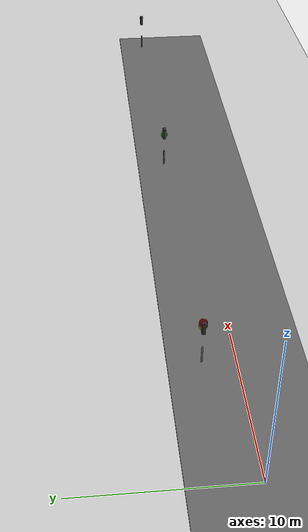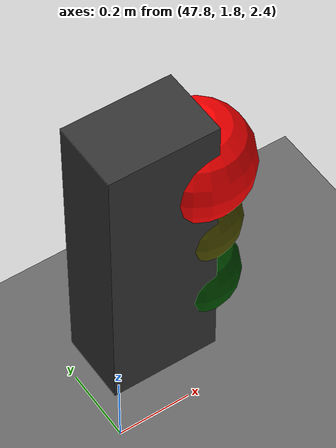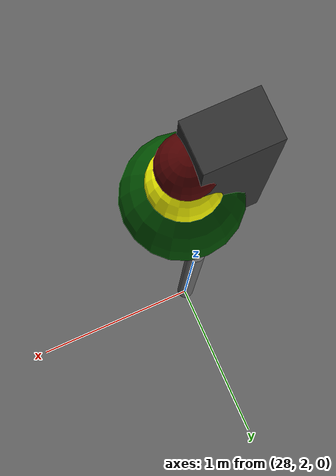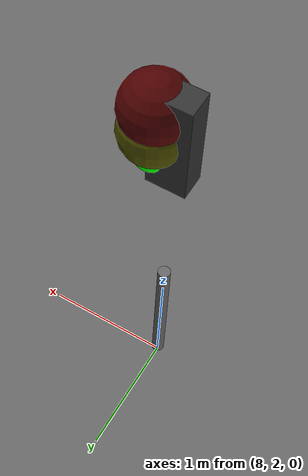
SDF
<?xml version="1.0"?>
<sdf version="1.6">
  <world name="minimal_traffic_world">

    <physics type="ode">
      <max_step_size>0.001</max_step_size>
      <real_time_factor>1</real_time_factor>
      <real_time_update_rate>1000</real_time_update_rate>
    </physics>

    <include>
      <uri>model://sun</uri>
    </include>

    <include>
      <uri>model://ground_plane</uri>
    </include>

    <!-- MAIN ROAD -->
    <model name="main_road">
      <static>true</static>
      <link name="link">
        <collision name="collision">
          <geometry>
            <box>
              <size>100 8 0.1</size>
            </box>
          </geometry>
        </collision>
        <visual name="visual">
          <geometry>
            <box>
              <size>100 8 0.1</size>
            </box>
          </geometry>
          <material>
            <ambient>0.3 0.3 0.3 1</ambient>
            <diffuse>0.4 0.4 0.4 1</diffuse>
          </material>
        </visual>
      </link>
      <pose>0 0 0 0 0 0</pose>
    </model>

    <!-- TRAFFIC LIGHT 1 - GREEN at 8m -->
    <model name="traffic_light_green">
      <static>true</static>
      <link name="pole">
        <visual name="visual">
          <geometry>
            <cylinder>
              <radius>0.05</radius>
              <length>2.5</length>
            </cylinder>
          </geometry>
          <material>
            <ambient>0.3 0.3 0.3 1</ambient>
            <diffuse>0.4 0.4 0.4 1</diffuse>
          </material>
        </visual>
      </link>

      <link name="housing">
        <visual name="visual">
          <geometry>
            <box>
              <size>0.3 0.2 0.8</size>
            </box>
          </geometry>
          <material>
            <ambient>0.1 0.1 0.1 1</ambient>
            <diffuse>0.2 0.2 0.2 1</diffuse>
          </material>
        </visual>
        <pose>0 0 2.8 0 0 0</pose>
      </link>

      <link name="red_light">
        <visual name="visual">
          <geometry>
            <sphere>
              <radius>0.25</radius>
            </sphere>
          </geometry>
          <material>
            <ambient>0.2 0 0 1</ambient>
            <diffuse>0.3 0 0 1</diffuse>
          </material>
        </visual>
        <pose>-0.15 0 3.0 0 0 0</pose>
      </link>

      <link name="yellow_light">
        <visual name="visual">
          <geometry>
            <sphere>
              <radius>0.25</radius>
            </sphere>
          </geometry>
          <material>
            <ambient>0.2 0.2 0 1</ambient>
            <diffuse>0.3 0.3 0 1</diffuse>
          </material>
        </visual>
        <pose>-0.15 0 2.8 0 0 0</pose>
      </link>

      <link name="green_light">
        <visual name="visual">
          <geometry>
            <sphere>
              <radius>0.15</radius>
            </sphere>
          </geometry>
          <material>
            <ambient>0 1 0 1</ambient>
            <diffuse>0 1 0 1</diffuse>
            <emissive>0 1 0 1</emissive>
          </material>
        </visual>
        <pose>-0.15 0 2.6 0 0 0</pose>
      </link>

      <pose>8 2 0 0 0 3.14159</pose>
    </model>

    <!-- TRAFFIC LIGHT 2 - YELLOW at 28m -->
    <model name="traffic_light_yellow">
      <static>true</static>
      <link name="pole">
        <visual name="visual">
          <geometry>
            <cylinder>
              <radius>0.05</radius>
              <length>2.5</length>
            </cylinder>
          </geometry>
          <material>
            <ambient>0.3 0.3 0.3 1</ambient>
            <diffuse>0.4 0.4 0.4 1</diffuse>
          </material>
        </visual>
      </link>

      <link name="housing">
        <visual name="visual">
          <geometry>
            <box>
              <size>0.3 0.2 0.8</size>
            </box>
          </geometry>
          <material>
            <ambient>0.1 0.1 0.1 1</ambient>
            <diffuse>0.2 0.2 0.2 1</diffuse>
          </material>
        </visual>
        <pose>0 0 2.8 0 0 0</pose>
      </link>

      <link name="red_light">
        <visual name="visual">
          <geometry>
            <sphere>
              <radius>0.12</radius>
            </sphere>
          </geometry>
          <material>
            <ambient>0.2 0 0 1</ambient>
            <diffuse>0.3 0 0 1</diffuse>
          </material>
        </visual>
        <pose>-0.15 0 3.0 0 0 0</pose>
      </link>

      <link name="yellow_light">
        <visual name="visual">
          <geometry>
            <sphere>
              <radius>0.15</radius>
            </sphere>
          </geometry>
          <material>
            <ambient>1 1 0 1</ambient>
            <diffuse>1 1 0 1</diffuse>
            <emissive>1 1 0 1</emissive>
          </material>
        </visual>
        <pose>-0.15 0 2.8 0 0 0</pose>
      </link>

      <link name="green_light">
        <visual name="visual">
          <geometry>
            <sphere>
              <radius>0.25</radius>
            </sphere>
          </geometry>
          <material>
            <ambient>0 0.2 0 1</ambient>
            <diffuse>0 0.3 0 1</diffuse>
          </material>
        </visual>
        <pose>-0.15 0 2.6 0 0 0</pose>
      </link>

      <pose>28 2 0 0 0 3.14159</pose>
    </model>

    <!-- TRAFFIC LIGHT 3 - RED at 48m -->
    <model name="traffic_light_red">
      <static>true</static>
      <link name="pole">
        <visual name="visual">
          <geometry>
            <cylinder>
              <radius>0.05</radius>
              <length>2.5</length>
            </cylinder>
          </geometry>
          <material>
            <ambient>0.3 0.3 0.3 1</ambient>
            <diffuse>0.4 0.4 0.4 1</diffuse>
          </material>
        </visual>
      </link>

      <link name="housing">
        <visual name="visual">
          <geometry>
            <box>
              <size>0.3 0.2 0.8</size>
            </box>
          </geometry>
          <material>
            <ambient>0.1 0.1 0.1 1</ambient>
            <diffuse>0.2 0.2 0.2 1</diffuse>
          </material>
        </visual>
        <pose>0 0 2.8 0 0 0</pose>
      </link>

      <link name="red_light">
        <visual name="visual">
          <geometry>
            <sphere>
              <radius>0.15</radius>
            </sphere>
          </geometry>
          <material>
            <ambient>1 0 0 1</ambient>
            <diffuse>1 0 0 1</diffuse>
            <emissive>1 0 0 1</emissive>
          </material>
        </visual>
        <pose>-0.15 0 3.0 0 0 0</pose>
      </link>

      <link name="yellow_light">
        <visual name="visual">
          <geometry>
            <sphere>
              <radius>0.12</radius>
            </sphere>
          </geometry>
          <material>
            <ambient>0.2 0.2 0 1</ambient>
            <diffuse>0.3 0.3 0 1</diffuse>
          </material>
        </visual>
        <pose>-0.15 0 2.8 0 0 0</pose>
      </link>

      <link name="green_light">
        <visual name="visual">
          <geometry>
            <sphere>
              <radius>0.12</radius>
            </sphere>
          </geometry>
          <material>
            <ambient>0 0.2 0 1</ambient>
            <diffuse>0 0.3 0 1</diffuse>
          </material>
        </visual>
        <pose>-0.15 0 2.6 0 0 0</pose>
      </link>

      <pose>48 2 0 0 0 3.14159</pose>
    </model>

    <!-- Lighting - NO OVERLAP -->
    <light name="traffic_green_light" type="point">
      <pose>8 2 2.8 0 0 0</pose>
      <diffuse>0 1 0 1</diffuse>
      <specular>0 0.5 0 1</specular>
      <attenuation>
        <range>6</range>
        <constant>1.0</constant>
        <linear>0.1</linear>
        <quadratic>0.05</quadratic>
      </attenuation>
      <cast_shadows>false</cast_shadows>
    </light>

    <light name="traffic_yellow_light" type="point">
      <pose>28 2 2.8 0 0 0</pose>
      <diffuse>1 1 0 1</diffuse>
      <specular>0.5 0.5 0 1</specular>
      <attenuation>
        <range>6</range>
        <constant>1.0</constant>
        <linear>0.1</linear>
        <quadratic>0.05</quadratic>
      </attenuation>
      <cast_shadows>false</cast_shadows>
    </light>

    <light name="traffic_red_light" type="point">
      <pose>48 2 2.8 0 0 0</pose>
      <diffuse>1 0 0 1</diffuse>
      <specular>0.5 0 0 1</specular>
      <attenuation>
        <range>6</range>
        <constant>1.0</constant>
        <linear>0.1</linear>
        <quadratic>0.05</quadratic>
      </attenuation>
      <cast_shadows>false</cast_shadows>
    </light>

    <scene>
      <ambient>0.8 0.8 0.8 1</ambient>
      <background>0.7 0.8 1 1</background>
      <shadows>true</shadows>
    </scene>

    <gui fullscreen='0'>
      <camera name='user_camera'>
        <pose>25 -15 10 0 0.4 1.57</pose>
        <view_controller>orbit</view_controller>
      </camera>
    </gui>

  </world>
</sdf>

<constant>1.0</constant>   <!-- Base intensity (no falloff) -->
<linear>0.3</linear>       <!-- Linear falloff rate -->
<quadratic>0.1</quadratic> <!-- Quadratic falloff rate (realistic physics) -->
-->
